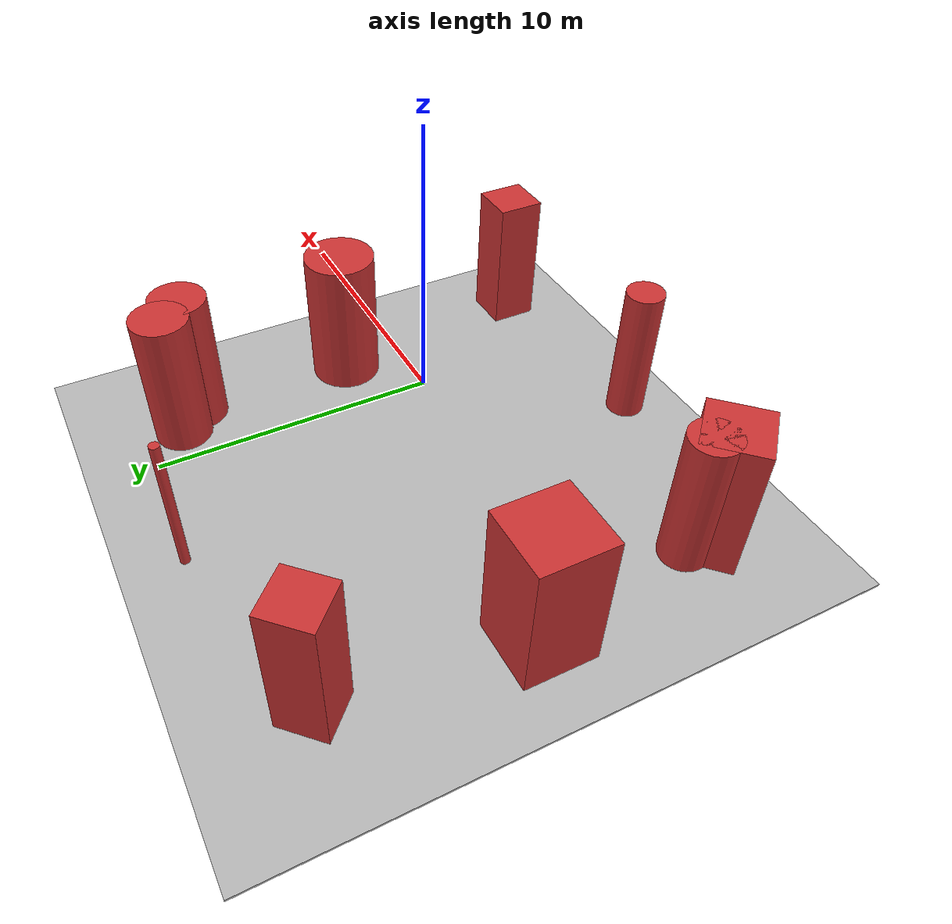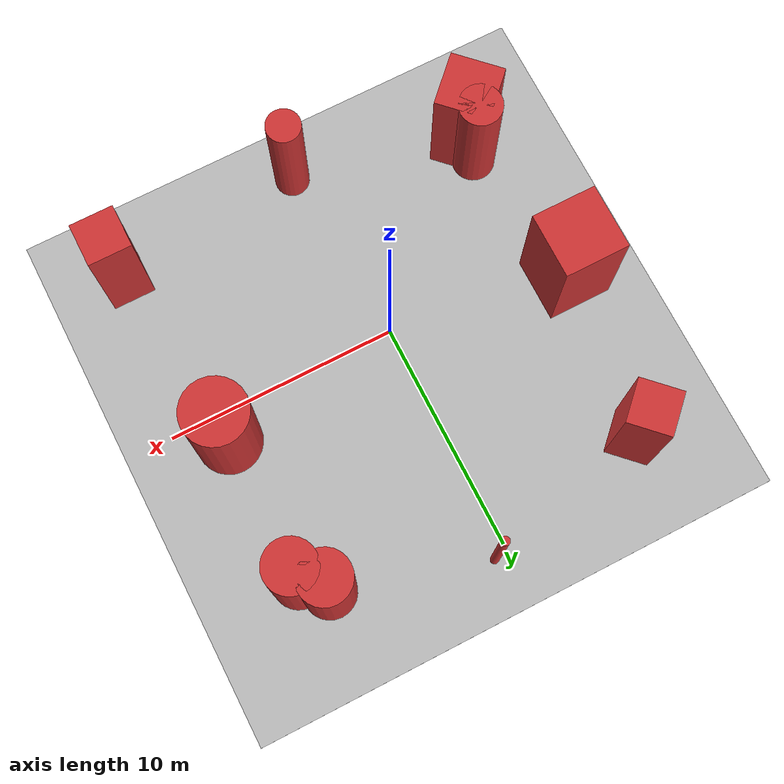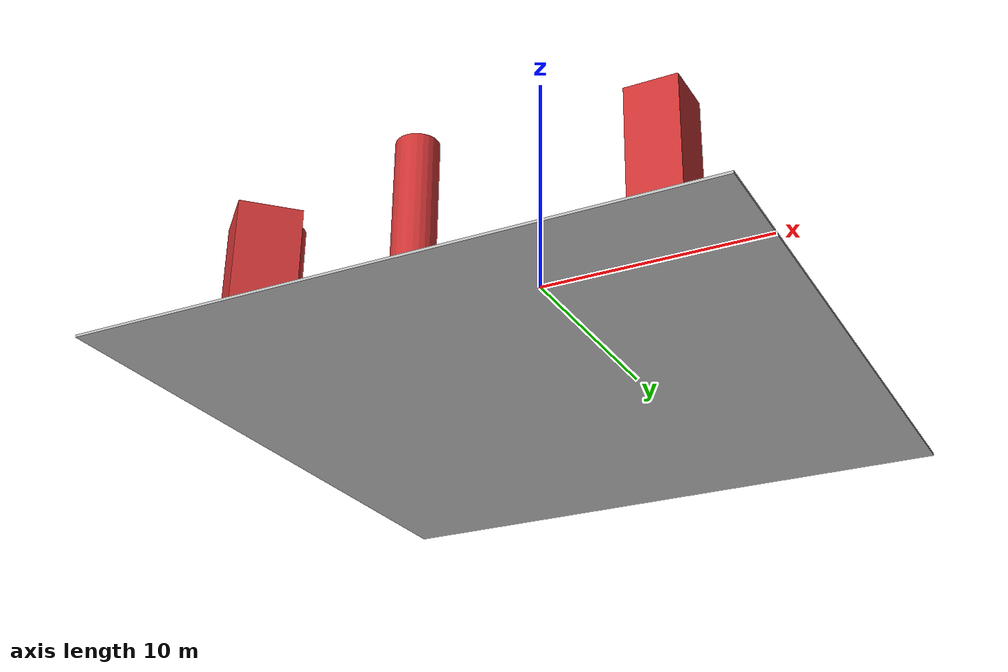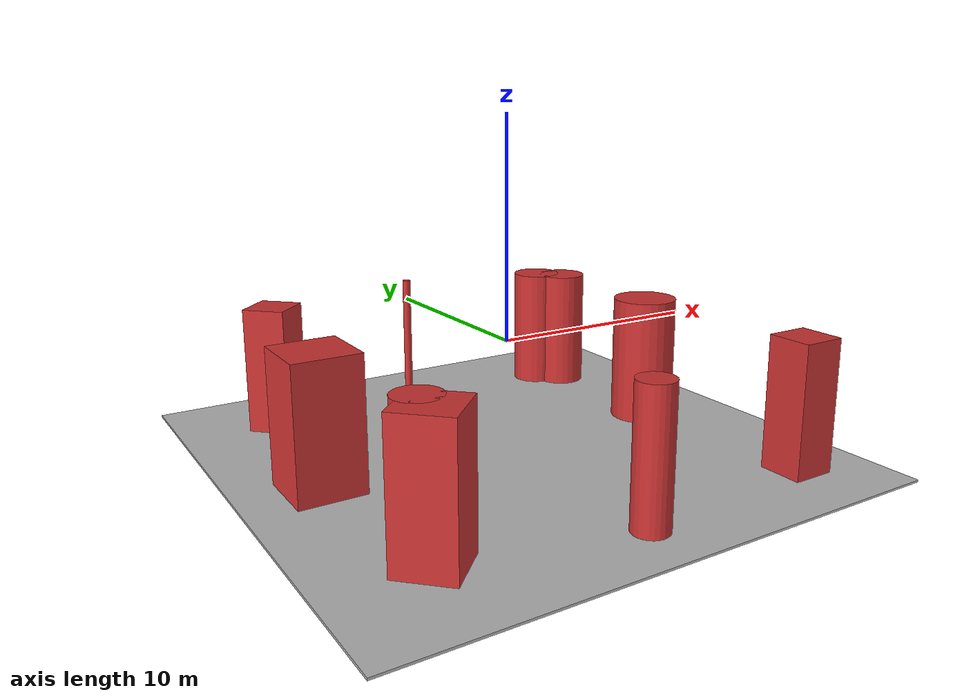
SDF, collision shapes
<?xml version="1.0" ?>
<sdf version="1.4">

<model name="ocean">
  <static>true</static>
  <link name="ocean_link">

  <!-- 海面尺寸调整为25x25米 -->
  <visual name="ocean_surface">
    <pose>0 0 0 0 0 0</pose>
    <cast_shadows>false</cast_shadows>
    <geometry>
      <mesh>
        <uri>file://Media/models/sea_surface_1000m_x_1000m.dae</uri>
        <!-- 缩放比例调整为0.025得到25x25米海面 -->
        <scale>0.025 0.025 0.025</scale>
      </mesh>
    </geometry>
    <material>
      <script>
        <uri>file://Media/materials/scripts/waves.material</uri>
        <name>UUVSimulator/SimpleWaves</name>
      </script>
    </material>
  </visual>

  <!-- 海底调整为25x25米 -->
  <visual name="seafloor">
    <cast_shadows>false</cast_shadows>
    <pose>0 0 -5 0 0 0</pose>
    <geometry>
      <box>
        <size>25 25 0.1</size> <!-- 深度5米 -->
      </box>
    </geometry>
  </visual>

  <collision name="seafloor">
    <pose>0 0 -5 0 0 0</pose>
    <geometry>
      <box>
        <size>25 25 0.1</size>
      </box>
    </geometry>
  </collision>

  <!-- 四面围墙调整为12.5米边界 -->
  <visual name="north">
    <pose>12.5 0 -2.5 0 -1.5708 0</pose> <!-- 北墙x=12.5米 -->
    <geometry>
      <plane>
        <normal>0 0 1</normal>
        <size>5 25</size> <!-- 高度5米，长度25米 -->
      </plane>
    </geometry>
  </visual>

  <visual name="south">
    <pose>-12.5 0 -2.5 0 1.5708 0</pose> <!-- 南墙x=-12.5米 -->
    <geometry>
      <plane>
        <normal>0 0 1</normal>
        <size>5 25</size>
      </plane>
    </geometry>
  </visual>

  <visual name="west">
    <pose>0 12.5 -2.5 1.5708 0 0</pose> <!-- 西墙y=12.5米 -->
    <geometry>
      <plane>
        <normal>0 0 1</normal>
        <size>25 5</size>
      </plane>
    </geometry>
  </visual>

  <visual name="east">
    <pose>0 -12.5 -2.5 -1.5708 0 0</pose> <!-- 东墙y=-12.5米 -->
    <geometry>
      <plane>
        <normal>0 0 1</normal>
        <size>25 5</size>
      </plane>
    </geometry>
  </visual>

  </link>

  <!-- 优化后的障碍物配置 -->
  <link name="additional_obstacles">
    <!-- 西北角障碍物组 -->
    <!-- 立方体 (3x3x6m) -->
    <collision name="nw_cube_collision">
      <pose>-8 8 -2 0 0 0.785</pose>
      <geometry>
        <box>
          <size>2 2 6</size> <!-- 底部Z=-5，顶部Z=1 -->
        </box>
      </geometry>
    </collision>
    <visual name="nw_cube_visual">
      <pose>-8 8 -2 0 0 0.785</pose>
      <geometry>
        <box>
          <size>2 2 6</size>
        </box>
      </geometry>
      <material>
        <ambient>0.8 0.2 0.2 1</ambient>
      </material>
    </visual>

    <!-- 东北角圆柱体 (半径1.2m，高5m) -->
    <collision name="ne_cyl_collision">
      <pose>7 8 -2 0 0 0</pose>
      <geometry>
        <cylinder>
          <radius>1.2</radius>
          <length>6</length> <!-- 底部Z=-5，顶部Z=0 -->
        </cylinder>
      </geometry>
    </collision>
    <visual name="ne_cyl_visual">
      <pose>7 8 -2 0 0 0</pose>
      <geometry>
        <cylinder>
          <radius>1.2</radius>
          <length>6</length>
        </cylinder>
      </geometry>
      <material>
        <ambient>0.3 0.3 1 1</ambient>
      </material>
    </visual>

    <!-- 东北角圆柱体 (半径1.2m，高5m) -->
    <collision name="3_collision">
      <pose>8 7 -2 0 0 0</pose>
      <geometry>
        <cylinder>
          <radius>1.2</radius>
          <length>6</length> <!-- 底部Z=-5，顶部Z=0 -->
        </cylinder>
      </geometry>
    </collision>
    <visual name="3_visual">
      <pose>8 7 -2 0 0 0</pose>
      <geometry>
        <cylinder>
          <radius>1.2</radius>
          <length>6</length>
        </cylinder>
      </geometry>
      <material>
        <ambient>0.3 0.3 1 1</ambient>
      </material>
    </visual>

    <!-- 东南角复合障碍物 -->
    <!-- 立方体 (2x2x6m) -->
    <collision name="se_cube_collision">
      <pose>9 -9 -2 0 0 0</pose>
      <geometry>
        <box>
          <size>2 2 6</size> <!-- 底部Z=-5，顶部Z=-1 -->
        </box>
      </geometry>
    </collision>
    <visual name="se_cube_visual">
      <pose>9 -9 -2 0 0 0</pose>
      <geometry>
        <box>
          <size>2 2 6</size>
        </box>
      </geometry>
      <material>
        <ambient>0.9 0.4 0.4 1</ambient>
      </material>
    </visual>

    <!-- 立方体 (3x3x6m) -->
    <collision name="4_collision">
      <pose>-9 0 -2 0 0 0</pose>
      <geometry>
        <box>
          <size>3 3 6</size> <!-- 底部Z=-5，顶部Z=-1 -->
        </box>
      </geometry>
    </collision>
    <visual name="4_visual">
      <pose>-9 0 -2 0 0 0</pose>
      <geometry>
        <box>
          <size>3 3 6</size>
        </box>
      </geometry>
      <material>
        <ambient>0.9 0.4 0.4 1</ambient>
      </material>
    </visual>

    <!-- 圆柱体 (半径0.8m，高5m) -->
    <collision name="se_cyl_collision">
      <pose>0 -10 -2 0 0 0</pose>
      <geometry>
        <cylinder>
          <radius>0.8</radius>
          <length>6</length> <!-- 底部Z=-5，顶部Z=0 -->
        </cylinder>
      </geometry>
    </collision>
    <visual name="se_cyl_visual">
      <pose>0 -10 -2 0 0 0</pose>
      <geometry>
        <cylinder>
          <radius>0.8</radius>
          <length>6</length>
        </cylinder>
      </geometry>
      <material>
        <ambient>0.4 0.4 0.9 1</ambient>
      </material>
    </visual>

    <!-- 圆柱体 (半径0.2m，高6m) -->
    <collision name="1_collision">
      <pose>0 10 -2 0 0 0</pose>
      <geometry>
        <cylinder>
          <radius>0.2</radius>
          <length>6</length> <!-- 底部Z=-5，顶部Z=0 -->
        </cylinder>
      </geometry>
    </collision>
    <visual name="1_visual">
      <pose>0 10 -2 0 0 0</pose>
      <geometry>
        <cylinder>
          <radius>0.2</radius>
          <length>6</length>
        </cylinder>
      </geometry>
      <material>
        <ambient>0.4 0.4 0.9 1</ambient>
      </material>
    </visual>

    <!-- 圆柱体 (半径1.5m，高6m) -->
    <collision name="2_collision">
      <pose>8 0 -2 0 0 0</pose>
      <geometry>
        <cylinder>
          <radius>1.5</radius>
          <length>6</length> <!-- 底部Z=-5，顶部Z=0 -->
        </cylinder>
      </geometry>
    </collision>
    <visual name="2_visual">
      <pose>8 0 -2 0 0 0</pose>
      <geometry>
        <cylinder>
          <radius>1.5</radius>
          <length>6</length>
        </cylinder>
      </geometry>
      <material>
        <ambient>0.4 0.4 0.9 1</ambient>
      </material>
    </visual>

    <!-- 西南角障碍物组 -->
    <!-- 立方体 (2.5x2.5x5m) -->
    <collision name="sw_cube_collision">
      <pose>-8 -8 -2 0 0 0.785</pose>
      <geometry>
        <box>
          <size>2.5 2.5 6</size> <!-- 底部Z=-5，顶部Z=0 -->
        </box>
      </geometry>
    </collision>
    <visual name="sw_cube_visual">
      <pose>-8 -8 -2 0 0 0.785</pose>
      <geometry>
        <box>
          <size>2.5 2.5 6</size>
        </box>
      </geometry>
      <material>
        <ambient>0.7 0.2 0.7 1</ambient>
      </material>
    </visual>

    <!-- 圆柱体 (半径1m，高6m) -->
    <collision name="sw_cyl_collision">
      <pose>-8 -7 -2 0 0 0</pose>
      <geometry>
        <cylinder>
          <radius>1.0</radius>
          <length>6</length> <!-- 底部Z=-5，顶部Z=1 -->
        </cylinder>
      </geometry>
    </collision>
    <visual name="sw_cyl_visual">
      <pose>-8 -7 -2 0 0 0</pose>
      <geometry>
        <cylinder>
          <radius>1.0</radius>
          <length>6</length>
        </cylinder>
      </geometry>
      <material>
        <ambient>0.5 0.5 1 1</ambient>
      </material>
    </visual>
  </link>

</model>
</sdf>
